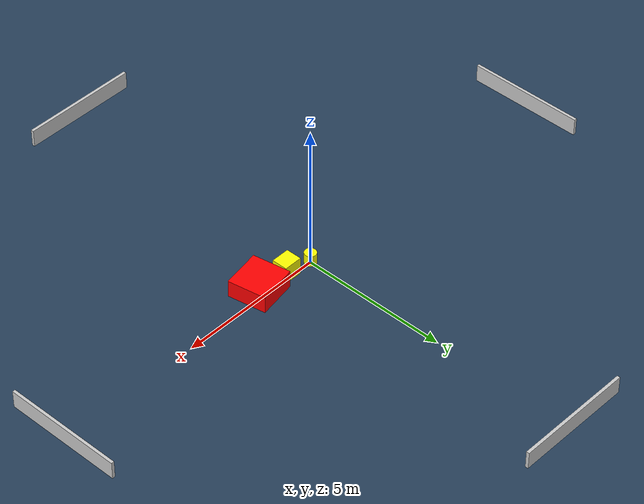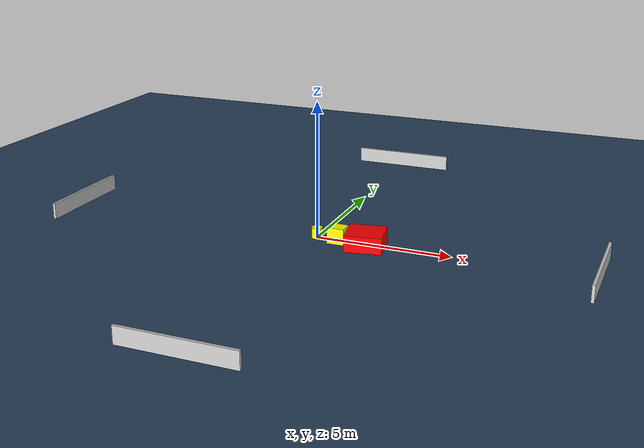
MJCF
<?xml version="1.0" ?>
<mujoco model="generated_environment">
  <option timestep="0.01" integrator="RK4" cone="elliptic"/>
  <default>
    <geom density="1"/>
  </default>
  <asset>
    <texture builtin="gradient" height="3072" name="skybox" rgb1="0.3 0.5 0.7" rgb2="0 0 0" type="skybox" width="512"/>
    <texture builtin="checker" height="300" name="groundplane" rgb1="0.2 0.3 0.4" rgb2="0.1 0.2 0.3" type="2d" width="300"/>
    <material name="groundplane" reflectance="0.2" texrepeat="5 5" texture="groundplane"/>
  </asset>
  <worldbody>
    <light dir="0 0 -1" directional="true" pos="0 0 1.5"/>
    <geom condim="3" friction="0.5 0.005 0.001" material="groundplane" name="floor" pos="0 0 0" size="0 0 0.05" type="plane"/>
    <body name="walls">
      <geom name="wall_1" condim="4" pos="-10.0 0.0 0.3" rgba="0.800000011920929 0.800000011920929 0.800000011920929 1.0" size="0.05 2.0 0.3" type="box"/>
      <geom name="wall_2" condim="4" pos="10.0 0.0 0.3" rgba="0.800000011920929 0.800000011920929 0.800000011920929 1.0" size="0.05 2.0 0.3" type="box"/>
      <geom name="wall_3" condim="4" pos="0.0 -10.0 0.3" rgba="0.800000011920929 0.800000011920929 0.800000011920929 1.0" size="2.0 0.05 0.3" type="box"/>
      <geom name="wall_4" condim="4" pos="0.0 10.0 0.3" rgba="0.800000011920929 0.800000011920929 0.800000011920929 1.0" size="2.0 0.05 0.3" type="box"/>
    </body>
    <body name="robot">
      <joint name="joint_x" type="slide" pos="0 0 0" axis="1 0 0"/>
      <joint name="joint_y" type="slide" pos="0 0 0" axis="0 1 0"/>
      <geom name="robot" type="cylinder" pos="0.0 0.0 0.2" size="0.2 0.2 0.0" mass="5.0" friction="1.0 0.005 0.0001" condim="4" rgba="1.0 1.0 0.0 1.0"/>
    </body>
    <body name="obstacle_1_movable">
      <geom name="obstacle_1_movable" condim="4" pos="0.8595268132484332 -0.15686688335078908 0.3" euler="0 0 90.40495134019571" friction="0.0 0.005 0.001" rgba="1.0 1.0 0.0 1.0" size="0.2662953224778757 0.3137496709572917 0.3" type="box" mass="0.1"/>
      <joint type="free"/>
    </body>
    <body name="obstacle_2_static">
      <geom name="obstacle_2_static" condim="4" pos="1.9432826503899208 -0.23940498799942272 0.3" euler="0 0 190.20842820386682" friction="0.0 0.005 0.001" rgba="1.0 0.0 0.0 1.0" size="0.670805346335019 0.6485099415822326 0.3" type="box"/>
    </body>
  </worldbody>
  <actuator>
    <motor name="actuator_x" joint="joint_x" gear="1" ctrlrange="-1 1"/>
    <motor name="actuator_y" joint="joint_y" gear="1" ctrlrange="-1 1"/>
  </actuator>
</mujoco>
